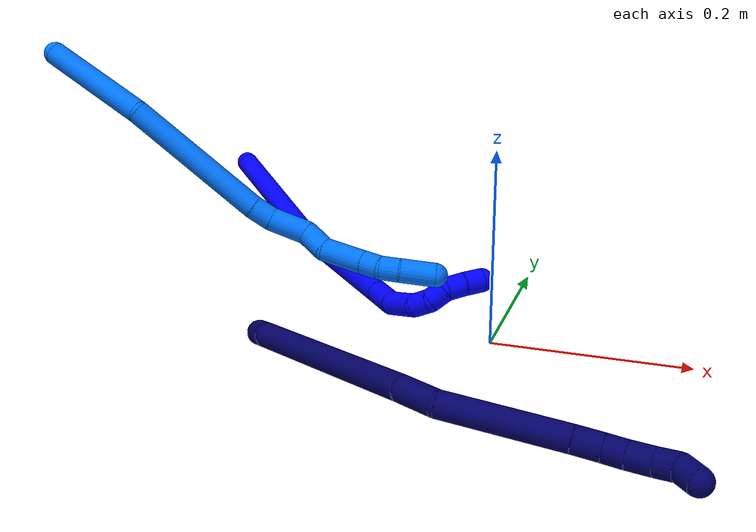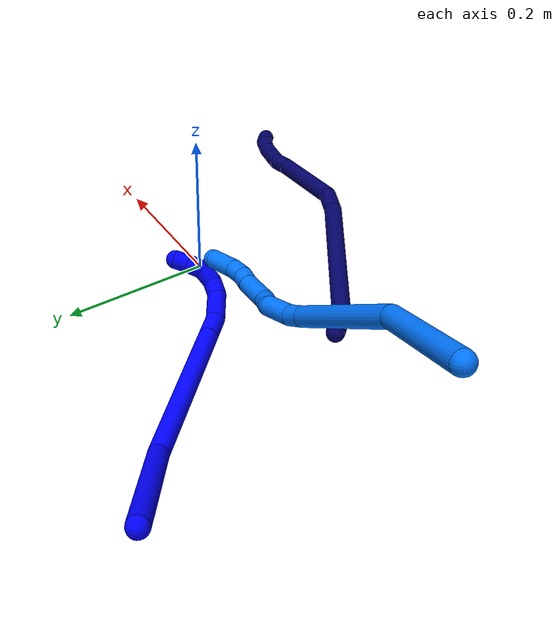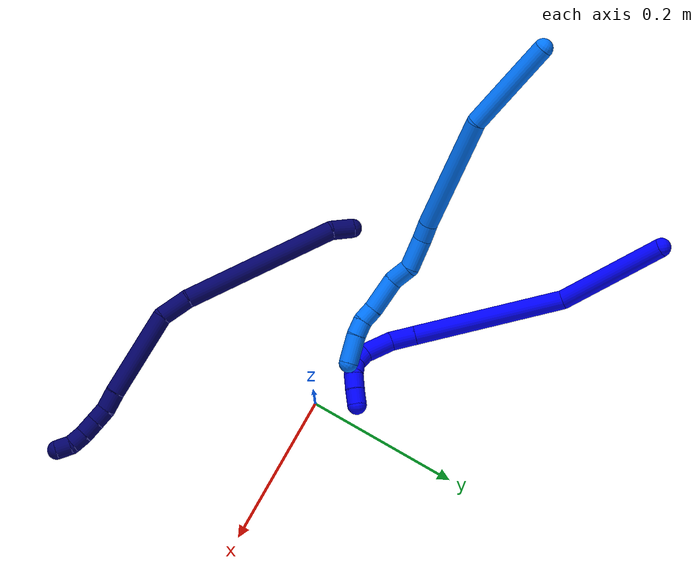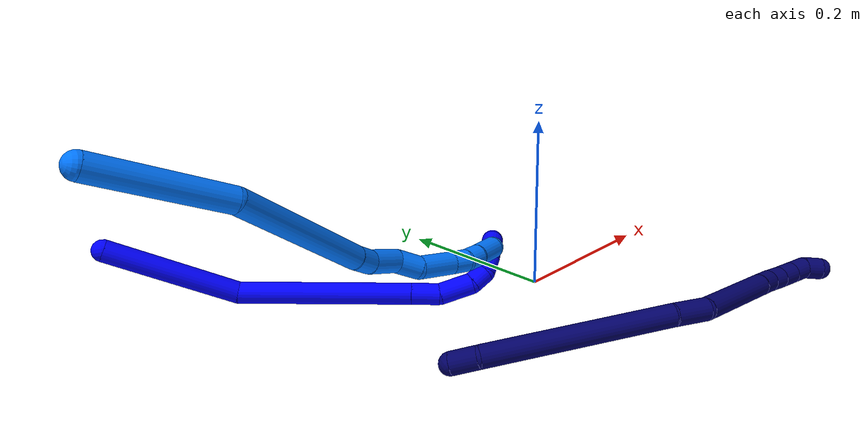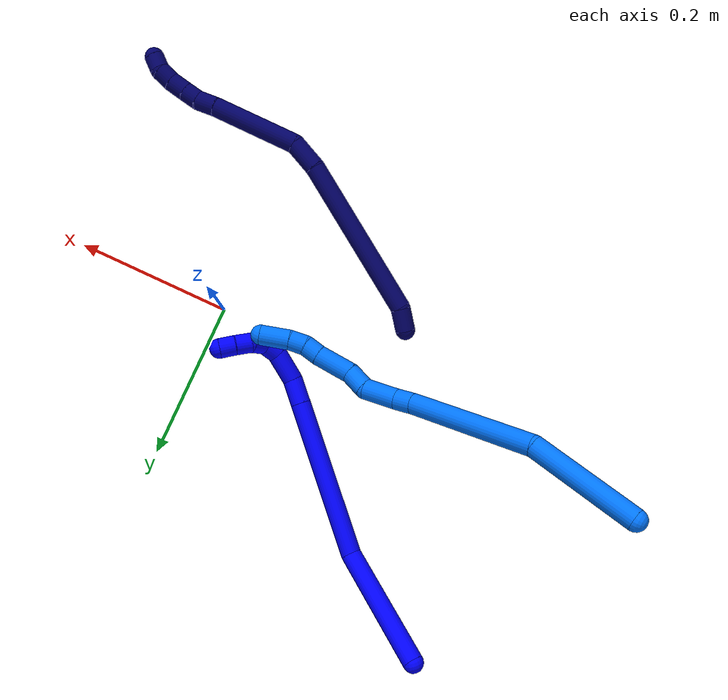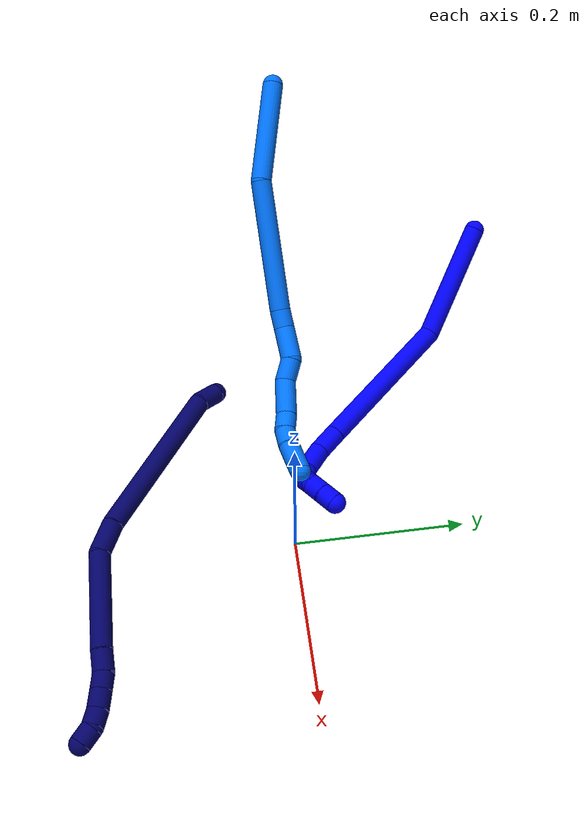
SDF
<sdf version="1.7">
 <world name="default">
  <model name="1">
   <static>0</static>
   <link name="1">
    <collision name="collision-cylinder-e_1_1_4">
     <pose>0.036945 0.030817 -0.058041 -2.65349 0.512157 -1.62095</pose>
     <geometry><cylinder><radius>0.0125</radius><length>0.150776</length></cylinder></geometry>
     <surface>
      <friction><ode><mu>1.16</mu><mu2>1.16</mu2><slip1>0</slip1><slip2>0</slip2></ode></friction>
      <contact><ode><kp>1e+06</kp><kd>1</kd><max_vel>0</max_vel><min_depth>0.001</min_depth></ode></contact>
     </surface>
    </collision>
    <visual name="visual-cylinder-e_1_1_4">
     <pose>0.036945 0.030817 -0.058041 -2.65349 0.512157 -1.62095</pose>
     <geometry><cylinder><radius>0.0125</radius><length>0.150776</length></cylinder></geometry>
     <material><ambient>0 0 1 1</ambient></material>
    </visual>
    <collision name="collision-cylinder-e_2_4_5">
     <pose>0.087077 0.078405 -0.212437 -2.96927 0.134032 -1.32116</pose>
     <geometry><cylinder><radius>0.0125</radius><length>0.197377</length></cylinder></geometry>
     <surface>
      <friction><ode><mu>1.16</mu><mu2>1.16</mu2><slip1>0</slip1><slip2>0</slip2></ode></friction>
      <contact><ode><kp>1e+06</kp><kd>1</kd><max_vel>0</max_vel><min_depth>0.001</min_depth></ode></contact>
     </surface>
    </collision>
    <visual name="visual-cylinder-e_2_4_5">
     <pose>0.087077 0.078405 -0.212437 -2.96927 0.134032 -1.32116</pose>
     <geometry><cylinder><radius>0.0125</radius><length>0.197377</length></cylinder></geometry>
     <material><ambient>0 0 1 1</ambient></material>
    </visual>
    <collision name="collision-cylinder-e_3_5_6">
     <pose>0.102583 0.098065 -0.324571 -2.96046 0.143498 -1.33896</pose>
     <geometry><cylinder><radius>0.0125</radius><length>0.032416</length></cylinder></geometry>
     <surface>
      <friction><ode><mu>1.16</mu><mu2>1.16</mu2><slip1>0</slip1><slip2>0</slip2></ode></friction>
      <contact><ode><kp>1e+06</kp><kd>1</kd><max_vel>0</max_vel><min_depth>0.001</min_depth></ode></contact>
     </surface>
    </collision>
    <visual name="visual-cylinder-e_3_5_6">
     <pose>0.102583 0.098065 -0.324571 -2.96046 0.143498 -1.33896</pose>
     <geometry><cylinder><radius>0.0125</radius><length>0.032416</length></cylinder></geometry>
     <material><ambient>0 0 1 1</ambient></material>
    </visual>
    <collision name="collision-cylinder-e_4_6_7">
     <pose>0.108466 0.097749 -0.359197 2.97314 0.18439 1.66155</pose>
     <geometry><cylinder><radius>0.0125</radius><length>0.038895</length></cylinder></geometry>
     <surface>
      <friction><ode><mu>1.16</mu><mu2>1.16</mu2><slip1>0</slip1><slip2>0</slip2></ode></friction>
      <contact><ode><kp>1e+06</kp><kd>1</kd><max_vel>0</max_vel><min_depth>0.001</min_depth></ode></contact>
     </surface>
    </collision>
    <visual name="visual-cylinder-e_4_6_7">
     <pose>0.108466 0.097749 -0.359197 2.97314 0.18439 1.66155</pose>
     <geometry><cylinder><radius>0.0125</radius><length>0.038895</length></cylinder></geometry>
     <material><ambient>0 0 1 1</ambient></material>
    </visual>
    <collision name="collision-cylinder-e_5_7_8">
     <pose>0.115355 0.089193 -0.38603 2.55117 0.332854 1.00936</pose>
     <geometry><cylinder><radius>0.0125</radius><length>0.020341</length></cylinder></geometry>
     <surface>
      <friction><ode><mu>1.16</mu><mu2>1.16</mu2><slip1>0</slip1><slip2>0</slip2></ode></friction>
      <contact><ode><kp>1e+06</kp><kd>1</kd><max_vel>0</max_vel><min_depth>0.001</min_depth></ode></contact>
     </surface>
    </collision>
    <visual name="visual-cylinder-e_5_7_8">
     <pose>0.115355 0.089193 -0.38603 2.55117 0.332854 1.00936</pose>
     <geometry><cylinder><radius>0.0125</radius><length>0.020341</length></cylinder></geometry>
     <material><ambient>0 0 1 1</ambient></material>
    </visual>
    <collision name="collision-cylinder-e_6_8_9">
     <pose>0.122455 0.075413 -0.397883 2.00104 0.386718 0.592622</pose>
     <geometry><cylinder><radius>0.0125</radius><length>0.020026</length></cylinder></geometry>
     <surface>
      <friction><ode><mu>1.16</mu><mu2>1.16</mu2><slip1>0</slip1><slip2>0</slip2></ode></friction>
      <contact><ode><kp>1e+06</kp><kd>1</kd><max_vel>0</max_vel><min_depth>0.001</min_depth></ode></contact>
     </surface>
    </collision>
    <visual name="visual-cylinder-e_6_8_9">
     <pose>0.122455 0.075413 -0.397883 2.00104 0.386718 0.592622</pose>
     <geometry><cylinder><radius>0.0125</radius><length>0.020026</length></cylinder></geometry>
     <material><ambient>0 0 1 1</ambient></material>
    </visual>
    <collision name="collision-cylinder-e_7_9_10">
     <pose>0.133979 0.060762 -0.403256 1.80819 0.880172 1.0785</pose>
     <geometry><cylinder><radius>0.0125</radius><length>0.020101</length></cylinder></geometry>
     <surface>
      <friction><ode><mu>1.16</mu><mu2>1.16</mu2><slip1>0</slip1><slip2>0</slip2></ode></friction>
      <contact><ode><kp>1e+06</kp><kd>1</kd><max_vel>0</max_vel><min_depth>0.001</min_depth></ode></contact>
     </surface>
    </collision>
    <visual name="visual-cylinder-e_7_9_10">
     <pose>0.133979 0.060762 -0.403256 1.80819 0.880172 1.0785</pose>
     <geometry><cylinder><radius>0.0125</radius><length>0.020101</length></cylinder></geometry>
     <material><ambient>0 0 1 1</ambient></material>
    </visual>
    <collision name="collision-cylinder-e_8_10_2">
     <pose>0.149937 0.048856 -0.405739 1.74105 0.958523 1.10513</pose>
     <geometry><cylinder><radius>0.0125</radius><length>0.020067</length></cylinder></geometry>
     <surface>
      <friction><ode><mu>1.16</mu><mu2>1.16</mu2><slip1>0</slip1><slip2>0</slip2></ode></friction>
      <contact><ode><kp>1e+06</kp><kd>1</kd><max_vel>0</max_vel><min_depth>0.001</min_depth></ode></contact>
     </surface>
    </collision>
    <visual name="visual-cylinder-e_8_10_2">
     <pose>0.149937 0.048856 -0.405739 1.74105 0.958523 1.10513</pose>
     <geometry><cylinder><radius>0.0125</radius><length>0.020067</length></cylinder></geometry>
     <material><ambient>0 0 1 1</ambient></material>
    </visual>
    <collision name="collision-sphere-2">
     <pose>0.158148 0.043173 -0.406716 0 -0 0</pose>
     <geometry><sphere><radius>0.0125</radius></sphere></geometry>
     <surface>
      <friction><ode><mu>1.16</mu><mu2>1.16</mu2><slip1>0</slip1><slip2>0</slip2></ode></friction>
      <contact><ode><kp>1e+06</kp><kd>1</kd><max_vel>0</max_vel><min_depth>0.001</min_depth></ode></contact>
     </surface>
    </collision>
    <visual name="visual-sphere-2">
     <pose>0.158148 0.043173 -0.406716 0 -0 0</pose>
     <geometry><sphere><radius>0.0125</radius></sphere></geometry>
     <material><ambient>0 0 1 1</ambient></material>
    </visual>
    <collision name="collision-sphere-10">
     <pose>0.141726 0.054539 -0.404762 0 -0 0</pose>
     <geometry><sphere><radius>0.0125</radius></sphere></geometry>
     <surface>
      <friction><ode><mu>1.16</mu><mu2>1.16</mu2><slip1>0</slip1><slip2>0</slip2></ode></friction>
      <contact><ode><kp>1e+06</kp><kd>1</kd><max_vel>0</max_vel><min_depth>0.001</min_depth></ode></contact>
     </surface>
    </collision>
    <visual name="visual-sphere-10">
     <pose>0.141726 0.054539 -0.404762 0 -0 0</pose>
     <geometry><sphere><radius>0.0125</radius></sphere></geometry>
     <material><ambient>0 0 1 1</ambient></material>
    </visual>
    <collision name="collision-sphere-9">
     <pose>0.126231 0.066985 -0.40175 0 -0 0</pose>
     <geometry><sphere><radius>0.0125</radius></sphere></geometry>
     <surface>
      <friction><ode><mu>1.16</mu><mu2>1.16</mu2><slip1>0</slip1><slip2>0</slip2></ode></friction>
      <contact><ode><kp>1e+06</kp><kd>1</kd><max_vel>0</max_vel><min_depth>0.001</min_depth></ode></contact>
     </surface>
    </collision>
    <visual name="visual-sphere-9">
     <pose>0.126231 0.066985 -0.40175 0 -0 0</pose>
     <geometry><sphere><radius>0.0125</radius></sphere></geometry>
     <material><ambient>0 0 1 1</ambient></material>
    </visual>
    <collision name="collision-sphere-4">
     <pose>0.073889 0.061634 -0.116082 0 -0 0</pose>
     <geometry><sphere><radius>0.0125</radius></sphere></geometry>
     <surface>
      <friction><ode><mu>1.16</mu><mu2>1.16</mu2><slip1>0</slip1><slip2>0</slip2></ode></friction>
      <contact><ode><kp>1e+06</kp><kd>1</kd><max_vel>0</max_vel><min_depth>0.001</min_depth></ode></contact>
     </surface>
    </collision>
    <visual name="visual-sphere-4">
     <pose>0.073889 0.061634 -0.116082 0 -0 0</pose>
     <geometry><sphere><radius>0.0125</radius></sphere></geometry>
     <material><ambient>0 0 1 1</ambient></material>
    </visual>
    <collision name="collision-sphere-1">
     <geometry><sphere><radius>0.0125</radius></sphere></geometry>
     <surface>
      <friction><ode><mu>1.16</mu><mu2>1.16</mu2><slip1>0</slip1><slip2>0</slip2></ode></friction>
      <contact><ode><kp>1e+06</kp><kd>1</kd><max_vel>0</max_vel><min_depth>0.001</min_depth></ode></contact>
     </surface>
    </collision>
    <visual name="visual-sphere-1">
     <geometry><sphere><radius>0.0125</radius></sphere></geometry>
     <material><ambient>0 0 1 1</ambient></material>
    </visual>
    <collision name="collision-sphere-8">
     <pose>0.118678 0.083842 -0.394015 0 -0 0</pose>
     <geometry><sphere><radius>0.0125</radius></sphere></geometry>
     <surface>
      <friction><ode><mu>1.16</mu><mu2>1.16</mu2><slip1>0</slip1><slip2>0</slip2></ode></friction>
      <contact><ode><kp>1e+06</kp><kd>1</kd><max_vel>0</max_vel><min_depth>0.001</min_depth></ode></contact>
     </surface>
    </collision>
    <visual name="visual-sphere-8">
     <pose>0.118678 0.083842 -0.394015 0 -0 0</pose>
     <geometry><sphere><radius>0.0125</radius></sphere></geometry>
     <material><ambient>0 0 1 1</ambient></material>
    </visual>
    <collision name="collision-sphere-5">
     <pose>0.100265 0.095175 -0.308792 0 -0 0</pose>
     <geometry><sphere><radius>0.0125</radius></sphere></geometry>
     <surface>
      <friction><ode><mu>1.16</mu><mu2>1.16</mu2><slip1>0</slip1><slip2>0</slip2></ode></friction>
      <contact><ode><kp>1e+06</kp><kd>1</kd><max_vel>0</max_vel><min_depth>0.001</min_depth></ode></contact>
     </surface>
    </collision>
    <visual name="visual-sphere-5">
     <pose>0.100265 0.095175 -0.308792 0 -0 0</pose>
     <geometry><sphere><radius>0.0125</radius></sphere></geometry>
     <material><ambient>0 0 1 1</ambient></material>
    </visual>
    <collision name="collision-sphere-6">
     <pose>0.104901 0.100955 -0.34035 0 -0 0</pose>
     <geometry><sphere><radius>0.0125</radius></sphere></geometry>
     <surface>
      <friction><ode><mu>1.16</mu><mu2>1.16</mu2><slip1>0</slip1><slip2>0</slip2></ode></friction>
      <contact><ode><kp>1e+06</kp><kd>1</kd><max_vel>0</max_vel><min_depth>0.001</min_depth></ode></contact>
     </surface>
    </collision>
    <visual name="visual-sphere-6">
     <pose>0.104901 0.100955 -0.34035 0 -0 0</pose>
     <geometry><sphere><radius>0.0125</radius></sphere></geometry>
     <material><ambient>0 0 1 1</ambient></material>
    </visual>
    <collision name="collision-sphere-7">
     <pose>0.112032 0.094544 -0.378044 0 -0 0</pose>
     <geometry><sphere><radius>0.0125</radius></sphere></geometry>
     <surface>
      <friction><ode><mu>1.16</mu><mu2>1.16</mu2><slip1>0</slip1><slip2>0</slip2></ode></friction>
      <contact><ode><kp>1e+06</kp><kd>1</kd><max_vel>0</max_vel><min_depth>0.001</min_depth></ode></contact>
     </surface>
    </collision>
    <visual name="visual-sphere-7">
     <pose>0.112032 0.094544 -0.378044 0 -0 0</pose>
     <geometry><sphere><radius>0.0125</radius></sphere></geometry>
     <material><ambient>0 0 1 1</ambient></material>
    </visual>
    <inertial>
     <pose>0.081604 0.065258 -0.214484 0 -0 0</pose>
     <mass>0.5</mass>
     <inertia>
      <ixx>-0.000709</ixx>
      <ixy>0</ixy>
      <ixz>0</ixz>
      <iyy>-0.00093</iyy>
      <iyz>0</iyz>
      <izz>-0.000492</izz>
     </inertia>
    </inertial>
   </link>
   <pose>-0.387913 0.28822 0.08133 -1.80012 0.514199 0.6126</pose>
  </model>
  <model name="7">
   <static>0</static>
   <link name="7">
    <collision name="collision-cylinder-e_1_1_4">
     <pose>-0.000717 -0.00649 0.013102 0.459912 -0.048983 -0.011469</pose>
     <geometry><cylinder><radius>0.0125</radius><length>0.029277</length></cylinder></geometry>
     <surface>
      <friction><ode><mu>1.16</mu><mu2>1.16</mu2><slip1>0</slip1><slip2>0</slip2></ode></friction>
      <contact><ode><kp>1e+06</kp><kd>1</kd><max_vel>0</max_vel><min_depth>0.001</min_depth></ode></contact>
     </surface>
    </collision>
    <visual name="visual-cylinder-e_1_1_4">
     <pose>-0.000717 -0.00649 0.013102 0.459912 -0.048983 -0.011469</pose>
     <geometry><cylinder><radius>0.0125</radius><length>0.029277</length></cylinder></geometry>
     <material><ambient>0.003922 0 0.403922 1</ambient></material>
    </visual>
    <collision name="collision-cylinder-e_2_4_5">
     <pose>0.030682 -0.053747 0.115854 0.426787 0.315225 0.068851</pose>
     <geometry><cylinder><radius>0.0125</radius><length>0.207177</length></cylinder></geometry>
     <surface>
      <friction><ode><mu>1.16</mu><mu2>1.16</mu2><slip1>0</slip1><slip2>0</slip2></ode></friction>
      <contact><ode><kp>1e+06</kp><kd>1</kd><max_vel>0</max_vel><min_depth>0.001</min_depth></ode></contact>
     </surface>
    </collision>
    <visual name="visual-cylinder-e_2_4_5">
     <pose>0.030682 -0.053747 0.115854 0.426787 0.315225 0.068851</pose>
     <geometry><cylinder><radius>0.0125</radius><length>0.207177</length></cylinder></geometry>
     <material><ambient>0.003922 0 0.403922 1</ambient></material>
    </visual>
    <collision name="collision-cylinder-e_3_5_6">
     <pose>0.072305 -0.101841 0.22131 0.43405 0.499577 0.112387</pose>
     <geometry><cylinder><radius>0.0125</radius><length>0.039693</length></cylinder></geometry>
     <surface>
      <friction><ode><mu>1.16</mu><mu2>1.16</mu2><slip1>0</slip1><slip2>0</slip2></ode></friction>
      <contact><ode><kp>1e+06</kp><kd>1</kd><max_vel>0</max_vel><min_depth>0.001</min_depth></ode></contact>
     </surface>
    </collision>
    <visual name="visual-cylinder-e_3_5_6">
     <pose>0.072305 -0.101841 0.22131 0.43405 0.499577 0.112387</pose>
     <geometry><cylinder><radius>0.0125</radius><length>0.039693</length></cylinder></geometry>
     <material><ambient>0.003922 0 0.403922 1</ambient></material>
    </visual>
    <collision name="collision-cylinder-e_4_6_7">
     <pose>0.125023 -0.11483 0.274446 0.150546 0.852636 0.068477</pose>
     <geometry><cylinder><radius>0.0125</radius><length>0.114766</length></cylinder></geometry>
     <surface>
      <friction><ode><mu>1.16</mu><mu2>1.16</mu2><slip1>0</slip1><slip2>0</slip2></ode></friction>
      <contact><ode><kp>1e+06</kp><kd>1</kd><max_vel>0</max_vel><min_depth>0.001</min_depth></ode></contact>
     </surface>
    </collision>
    <visual name="visual-cylinder-e_4_6_7">
     <pose>0.125023 -0.11483 0.274446 0.150546 0.852636 0.068477</pose>
     <geometry><cylinder><radius>0.0125</radius><length>0.114766</length></cylinder></geometry>
     <material><ambient>0.003922 0 0.403922 1</ambient></material>
    </visual>
    <collision name="collision-cylinder-e_5_7_8">
     <pose>0.178633 -0.12156 0.319386 0.139332 0.934472 0.070377</pose>
     <geometry><cylinder><radius>0.0125</radius><length>0.025861</length></cylinder></geometry>
     <surface>
      <friction><ode><mu>1.16</mu><mu2>1.16</mu2><slip1>0</slip1><slip2>0</slip2></ode></friction>
      <contact><ode><kp>1e+06</kp><kd>1</kd><max_vel>0</max_vel><min_depth>0.001</min_depth></ode></contact>
     </surface>
    </collision>
    <visual name="visual-cylinder-e_5_7_8">
     <pose>0.178633 -0.12156 0.319386 0.139332 0.934472 0.070377</pose>
     <geometry><cylinder><radius>0.0125</radius><length>0.025861</length></cylinder></geometry>
     <material><ambient>0.003922 0 0.403922 1</ambient></material>
    </visual>
    <collision name="collision-cylinder-e_6_8_9">
     <pose>0.195559 -0.124598 0.33441 0.259847 0.704899 0.096041</pose>
     <geometry><cylinder><radius>0.0125</radius><length>0.020144</length></cylinder></geometry>
     <surface>
      <friction><ode><mu>1.16</mu><mu2>1.16</mu2><slip1>0</slip1><slip2>0</slip2></ode></friction>
      <contact><ode><kp>1e+06</kp><kd>1</kd><max_vel>0</max_vel><min_depth>0.001</min_depth></ode></contact>
     </surface>
    </collision>
    <visual name="visual-cylinder-e_6_8_9">
     <pose>0.195559 -0.124598 0.33441 0.259847 0.704899 0.096041</pose>
     <geometry><cylinder><radius>0.0125</radius><length>0.020144</length></cylinder></geometry>
     <material><ambient>0.003922 0 0.403922 1</ambient></material>
    </visual>
    <collision name="collision-cylinder-e_7_9_10">
     <pose>0.209186 -0.128524 0.350505 0.221459 0.673534 0.077813</pose>
     <geometry><cylinder><radius>0.0125</radius><length>0.022769</length></cylinder></geometry>
     <surface>
      <friction><ode><mu>1.16</mu><mu2>1.16</mu2><slip1>0</slip1><slip2>0</slip2></ode></friction>
      <contact><ode><kp>1e+06</kp><kd>1</kd><max_vel>0</max_vel><min_depth>0.001</min_depth></ode></contact>
     </surface>
    </collision>
    <visual name="visual-cylinder-e_7_9_10">
     <pose>0.209186 -0.128524 0.350505 0.221459 0.673534 0.077813</pose>
     <geometry><cylinder><radius>0.0125</radius><length>0.022769</length></cylinder></geometry>
     <material><ambient>0.003922 0 0.403922 1</ambient></material>
    </visual>
    <collision name="collision-cylinder-e_8_10_11">
     <pose>0.22114 -0.132574 0.367785 0.239068 0.501541 0.061514</pose>
     <geometry><cylinder><radius>0.0125</radius><length>0.020187</length></cylinder></geometry>
     <surface>
      <friction><ode><mu>1.16</mu><mu2>1.16</mu2><slip1>0</slip1><slip2>0</slip2></ode></friction>
      <contact><ode><kp>1e+06</kp><kd>1</kd><max_vel>0</max_vel><min_depth>0.001</min_depth></ode></contact>
     </surface>
    </collision>
    <visual name="visual-cylinder-e_8_10_11">
     <pose>0.22114 -0.132574 0.367785 0.239068 0.501541 0.061514</pose>
     <geometry><cylinder><radius>0.0125</radius><length>0.020187</length></cylinder></geometry>
     <material><ambient>0.003922 0 0.403922 1</ambient></material>
    </visual>
    <collision name="collision-cylinder-e_9_11_2">
     <pose>0.229237 -0.140779 0.383693 0.696172 0.328284 0.120058</pose>
     <geometry><cylinder><radius>0.0125</radius><length>0.020126</length></cylinder></geometry>
     <surface>
      <friction><ode><mu>1.16</mu><mu2>1.16</mu2><slip1>0</slip1><slip2>0</slip2></ode></friction>
      <contact><ode><kp>1e+06</kp><kd>1</kd><max_vel>0</max_vel><min_depth>0.001</min_depth></ode></contact>
     </surface>
    </collision>
    <visual name="visual-cylinder-e_9_11_2">
     <pose>0.229237 -0.140779 0.383693 0.696172 0.328284 0.120058</pose>
     <geometry><cylinder><radius>0.0125</radius><length>0.020126</length></cylinder></geometry>
     <material><ambient>0.003922 0 0.403922 1</ambient></material>
    </visual>
    <collision name="collision-sphere-2">
     <pose>0.232482 -0.146888 0.391002 0 -0 0</pose>
     <geometry><sphere><radius>0.0125</radius></sphere></geometry>
     <surface>
      <friction><ode><mu>1.16</mu><mu2>1.16</mu2><slip1>0</slip1><slip2>0</slip2></ode></friction>
      <contact><ode><kp>1e+06</kp><kd>1</kd><max_vel>0</max_vel><min_depth>0.001</min_depth></ode></contact>
     </surface>
    </collision>
    <visual name="visual-sphere-2">
     <pose>0.232482 -0.146888 0.391002 0 -0 0</pose>
     <geometry><sphere><radius>0.0125</radius></sphere></geometry>
     <material><ambient>0.003922 0 0.403922 1</ambient></material>
    </visual>
    <collision name="collision-sphere-11">
     <pose>0.225993 -0.13467 0.376383 0 -0 0</pose>
     <geometry><sphere><radius>0.0125</radius></sphere></geometry>
     <surface>
      <friction><ode><mu>1.16</mu><mu2>1.16</mu2><slip1>0</slip1><slip2>0</slip2></ode></friction>
      <contact><ode><kp>1e+06</kp><kd>1</kd><max_vel>0</max_vel><min_depth>0.001</min_depth></ode></contact>
     </surface>
    </collision>
    <visual name="visual-sphere-11">
     <pose>0.225993 -0.13467 0.376383 0 -0 0</pose>
     <geometry><sphere><radius>0.0125</radius></sphere></geometry>
     <material><ambient>0.003922 0 0.403922 1</ambient></material>
    </visual>
    <collision name="collision-sphere-10">
     <pose>0.216287 -0.130479 0.359186 0 -0 0</pose>
     <geometry><sphere><radius>0.0125</radius></sphere></geometry>
     <surface>
      <friction><ode><mu>1.16</mu><mu2>1.16</mu2><slip1>0</slip1><slip2>0</slip2></ode></friction>
      <contact><ode><kp>1e+06</kp><kd>1</kd><max_vel>0</max_vel><min_depth>0.001</min_depth></ode></contact>
     </surface>
    </collision>
    <visual name="visual-sphere-10">
     <pose>0.216287 -0.130479 0.359186 0 -0 0</pose>
     <geometry><sphere><radius>0.0125</radius></sphere></geometry>
     <material><ambient>0.003922 0 0.403922 1</ambient></material>
    </visual>
    <collision name="collision-sphere-9">
     <pose>0.202085 -0.126569 0.341824 0 -0 0</pose>
     <geometry><sphere><radius>0.0125</radius></sphere></geometry>
     <surface>
      <friction><ode><mu>1.16</mu><mu2>1.16</mu2><slip1>0</slip1><slip2>0</slip2></ode></friction>
      <contact><ode><kp>1e+06</kp><kd>1</kd><max_vel>0</max_vel><min_depth>0.001</min_depth></ode></contact>
     </surface>
    </collision>
    <visual name="visual-sphere-9">
     <pose>0.202085 -0.126569 0.341824 0 -0 0</pose>
     <geometry><sphere><radius>0.0125</radius></sphere></geometry>
     <material><ambient>0.003922 0 0.403922 1</ambient></material>
    </visual>
    <collision name="collision-sphere-4">
     <pose>-0.001434 -0.01298 0.026204 0 -0 0</pose>
     <geometry><sphere><radius>0.0125</radius></sphere></geometry>
     <surface>
      <friction><ode><mu>1.16</mu><mu2>1.16</mu2><slip1>0</slip1><slip2>0</slip2></ode></friction>
      <contact><ode><kp>1e+06</kp><kd>1</kd><max_vel>0</max_vel><min_depth>0.001</min_depth></ode></contact>
     </surface>
    </collision>
    <visual name="visual-sphere-4">
     <pose>-0.001434 -0.01298 0.026204 0 -0 0</pose>
     <geometry><sphere><radius>0.0125</radius></sphere></geometry>
     <material><ambient>0.003922 0 0.403922 1</ambient></material>
    </visual>
    <collision name="collision-sphere-1">
     <geometry><sphere><radius>0.0125</radius></sphere></geometry>
     <surface>
      <friction><ode><mu>1.16</mu><mu2>1.16</mu2><slip1>0</slip1><slip2>0</slip2></ode></friction>
      <contact><ode><kp>1e+06</kp><kd>1</kd><max_vel>0</max_vel><min_depth>0.001</min_depth></ode></contact>
     </surface>
    </collision>
    <visual name="visual-sphere-1">
     <geometry><sphere><radius>0.0125</radius></sphere></geometry>
     <material><ambient>0.003922 0 0.403922 1</ambient></material>
    </visual>
    <collision name="collision-sphere-8">
     <pose>0.189032 -0.122627 0.326996 0 -0 0</pose>
     <geometry><sphere><radius>0.0125</radius></sphere></geometry>
     <surface>
      <friction><ode><mu>1.16</mu><mu2>1.16</mu2><slip1>0</slip1><slip2>0</slip2></ode></friction>
      <contact><ode><kp>1e+06</kp><kd>1</kd><max_vel>0</max_vel><min_depth>0.001</min_depth></ode></contact>
     </surface>
    </collision>
    <visual name="visual-sphere-8">
     <pose>0.189032 -0.122627 0.326996 0 -0 0</pose>
     <geometry><sphere><radius>0.0125</radius></sphere></geometry>
     <material><ambient>0.003922 0 0.403922 1</ambient></material>
    </visual>
    <collision name="collision-sphere-5">
     <pose>0.062798 -0.094515 0.205505 0 -0 0</pose>
     <geometry><sphere><radius>0.0125</radius></sphere></geometry>
     <surface>
      <friction><ode><mu>1.16</mu><mu2>1.16</mu2><slip1>0</slip1><slip2>0</slip2></ode></friction>
      <contact><ode><kp>1e+06</kp><kd>1</kd><max_vel>0</max_vel><min_depth>0.001</min_depth></ode></contact>
     </surface>
    </collision>
    <visual name="visual-sphere-5">
     <pose>0.062798 -0.094515 0.205505 0 -0 0</pose>
     <geometry><sphere><radius>0.0125</radius></sphere></geometry>
     <material><ambient>0.003922 0 0.403922 1</ambient></material>
    </visual>
    <collision name="collision-sphere-6">
     <pose>0.081813 -0.109167 0.237115 0 -0 0</pose>
     <geometry><sphere><radius>0.0125</radius></sphere></geometry>
     <surface>
      <friction><ode><mu>1.16</mu><mu2>1.16</mu2><slip1>0</slip1><slip2>0</slip2></ode></friction>
      <contact><ode><kp>1e+06</kp><kd>1</kd><max_vel>0</max_vel><min_depth>0.001</min_depth></ode></contact>
     </surface>
    </collision>
    <visual name="visual-sphere-6">
     <pose>0.081813 -0.109167 0.237115 0 -0 0</pose>
     <geometry><sphere><radius>0.0125</radius></sphere></geometry>
     <material><ambient>0.003922 0 0.403922 1</ambient></material>
    </visual>
    <collision name="collision-sphere-7">
     <pose>0.168233 -0.120493 0.311777 0 -0 0</pose>
     <geometry><sphere><radius>0.0125</radius></sphere></geometry>
     <surface>
      <friction><ode><mu>1.16</mu><mu2>1.16</mu2><slip1>0</slip1><slip2>0</slip2></ode></friction>
      <contact><ode><kp>1e+06</kp><kd>1</kd><max_vel>0</max_vel><min_depth>0.001</min_depth></ode></contact>
     </surface>
    </collision>
    <visual name="visual-sphere-7">
     <pose>0.168233 -0.120493 0.311777 0 -0 0</pose>
     <geometry><sphere><radius>0.0125</radius></sphere></geometry>
     <material><ambient>0.003922 0 0.403922 1</ambient></material>
    </visual>
    <inertial>
     <pose>0.091907 -0.085271 0.205581 0 -0 0</pose>
     <mass>0.5</mass>
     <inertia><ixx>0.000886</ixx><ixy>0</ixy><ixz>0</ixz><iyy>0.000879</iyy><iyz>0</iyz><izz>5e-06</izz></inertia>
    </inertial>
   </link>
   <pose>-0.221257 -0.072042 0.011473 0.792604 0.59125 0.526023</pose>
  </model>
  <model name="14">
   <static>0</static>
   <link name="14">
    <collision name="collision-cylinder-e_1_1_4">
     <pose>-0.0008 -0.008687 -0.062783 3.0041 -0.012619 -0.182771</pose>
     <geometry><cylinder><radius>0.0125</radius><length>0.126771</length></cylinder></geometry>
     <surface>
      <friction><ode><mu>1.16</mu><mu2>1.16</mu2><slip1>0</slip1><slip2>0</slip2></ode></friction>
      <contact><ode><kp>1e+06</kp><kd>1</kd><max_vel>0</max_vel><min_depth>0.001</min_depth></ode></contact>
     </surface>
    </collision>
    <visual name="visual-cylinder-e_1_1_4">
     <pose>-0.0008 -0.008687 -0.062783 3.0041 -0.012619 -0.182771</pose>
     <geometry><cylinder><radius>0.0125</radius><length>0.126771</length></cylinder></geometry>
     <material><ambient>0 0.462745 1 1</ambient></material>
    </visual>
    <collision name="collision-cylinder-e_2_4_5">
     <pose>-0.025912 -0.014512 -0.201219 -3.1038 -0.310729 2.90141</pose>
     <geometry><cylinder><radius>0.0125</radius><length>0.159033</length></cylinder></geometry>
     <surface>
      <friction><ode><mu>1.16</mu><mu2>1.16</mu2><slip1>0</slip1><slip2>0</slip2></ode></friction>
      <contact><ode><kp>1e+06</kp><kd>1</kd><max_vel>0</max_vel><min_depth>0.001</min_depth></ode></contact>
     </surface>
    </collision>
    <visual name="visual-cylinder-e_2_4_5">
     <pose>-0.025912 -0.014512 -0.201219 -3.1038 -0.310729 2.90141</pose>
     <geometry><cylinder><radius>0.0125</radius><length>0.159033</length></cylinder></geometry>
     <material><ambient>0 0.462745 1 1</ambient></material>
    </visual>
    <collision name="collision-cylinder-e_3_5_6">
     <pose>-0.053071 -0.010042 -0.287972 -2.99756 -0.24856 2.09419</pose>
     <geometry><cylinder><radius>0.0125</radius><length>0.02314</length></cylinder></geometry>
     <surface>
      <friction><ode><mu>1.16</mu><mu2>1.16</mu2><slip1>0</slip1><slip2>0</slip2></ode></friction>
      <contact><ode><kp>1e+06</kp><kd>1</kd><max_vel>0</max_vel><min_depth>0.001</min_depth></ode></contact>
     </surface>
    </collision>
    <visual name="visual-cylinder-e_3_5_6">
     <pose>-0.053071 -0.010042 -0.287972 -2.99756 -0.24856 2.09419</pose>
     <geometry><cylinder><radius>0.0125</radius><length>0.02314</length></cylinder></geometry>
     <material><ambient>0 0.462745 1 1</ambient></material>
    </visual>
    <collision name="collision-cylinder-e_4_6_7">
     <pose>-0.056376 -0.004409 -0.318955 -2.94195 -0.022617 0.224879</pose>
     <geometry><cylinder><radius>0.0125</radius><length>0.040585</length></cylinder></geometry>
     <surface>
      <friction><ode><mu>1.16</mu><mu2>1.16</mu2><slip1>0</slip1><slip2>0</slip2></ode></friction>
      <contact><ode><kp>1e+06</kp><kd>1</kd><max_vel>0</max_vel><min_depth>0.001</min_depth></ode></contact>
     </surface>
    </collision>
    <visual name="visual-cylinder-e_4_6_7">
     <pose>-0.056376 -0.004409 -0.318955 -2.94195 -0.022617 0.224879</pose>
     <geometry><cylinder><radius>0.0125</radius><length>0.040585</length></cylinder></geometry>
     <material><ambient>0 0.462745 1 1</ambient></material>
    </visual>
    <collision name="collision-cylinder-e_5_7_8">
     <pose>-0.057091 -0.004608 -0.352308 2.83779 -0.018155 -0.118463</pose>
     <geometry><cylinder><radius>0.0125</radius><length>0.028235</length></cylinder></geometry>
     <surface>
      <friction><ode><mu>1.16</mu><mu2>1.16</mu2><slip1>0</slip1><slip2>0</slip2></ode></friction>
      <contact><ode><kp>1e+06</kp><kd>1</kd><max_vel>0</max_vel><min_depth>0.001</min_depth></ode></contact>
     </surface>
    </collision>
    <visual name="visual-cylinder-e_5_7_8">
     <pose>-0.057091 -0.004608 -0.352308 2.83779 -0.018155 -0.118463</pose>
     <geometry><cylinder><radius>0.0125</radius><length>0.028235</length></cylinder></geometry>
     <material><ambient>0 0.462745 1 1</ambient></material>
    </visual>
    <collision name="collision-cylinder-e_6_8_9">
     <pose>-0.053522 -0.007181 -0.387927 -3.06727 0.170549 -2.32112</pose>
     <geometry><cylinder><radius>0.0125</radius><length>0.045077</length></cylinder></geometry>
     <surface>
      <friction><ode><mu>1.16</mu><mu2>1.16</mu2><slip1>0</slip1><slip2>0</slip2></ode></friction>
      <contact><ode><kp>1e+06</kp><kd>1</kd><max_vel>0</max_vel><min_depth>0.001</min_depth></ode></contact>
     </surface>
    </collision>
    <visual name="visual-cylinder-e_6_8_9">
     <pose>-0.053522 -0.007181 -0.387927 -3.06727 0.170549 -2.32112</pose>
     <geometry><cylinder><radius>0.0125</radius><length>0.045077</length></cylinder></geometry>
     <material><ambient>0 0.462745 1 1</ambient></material>
    </visual>
    <collision name="collision-cylinder-e_7_9_10">
     <pose>-0.046935 -0.005742 -0.419774 3.11993 0.277456 2.98675</pose>
     <geometry><cylinder><radius>0.0125</radius><length>0.020169</length></cylinder></geometry>
     <surface>
      <friction><ode><mu>1.16</mu><mu2>1.16</mu2><slip1>0</slip1><slip2>0</slip2></ode></friction>
      <contact><ode><kp>1e+06</kp><kd>1</kd><max_vel>0</max_vel><min_depth>0.001</min_depth></ode></contact>
     </surface>
    </collision>
    <visual name="visual-cylinder-e_7_9_10">
     <pose>-0.046935 -0.005742 -0.419774 3.11993 0.277456 2.98675</pose>
     <geometry><cylinder><radius>0.0125</radius><length>0.020169</length></cylinder></geometry>
     <material><ambient>0 0.462745 1 1</ambient></material>
    </visual>
    <collision name="collision-cylinder-e_8_10_11">
     <pose>-0.042048 -0.003061 -0.438947 -2.84545 0.211202 -1.23561</pose>
     <geometry><cylinder><radius>0.0125</radius><length>0.020267</length></cylinder></geometry>
     <surface>
      <friction><ode><mu>1.16</mu><mu2>1.16</mu2><slip1>0</slip1><slip2>0</slip2></ode></friction>
      <contact><ode><kp>1e+06</kp><kd>1</kd><max_vel>0</max_vel><min_depth>0.001</min_depth></ode></contact>
     </surface>
    </collision>
    <visual name="visual-cylinder-e_8_10_11">
     <pose>-0.042048 -0.003061 -0.438947 -2.84545 0.211202 -1.23561</pose>
     <geometry><cylinder><radius>0.0125</radius><length>0.020267</length></cylinder></geometry>
     <material><ambient>0 0.462745 1 1</ambient></material>
    </visual>
    <collision name="collision-cylinder-e_9_11_2">
     <pose>-0.037998 0.007217 -0.465124 -2.7252 0.105083 -0.487952</pose>
     <geometry><cylinder><radius>0.0125</radius><length>0.036723</length></cylinder></geometry>
     <surface>
      <friction><ode><mu>1.16</mu><mu2>1.16</mu2><slip1>0</slip1><slip2>0</slip2></ode></friction>
      <contact><ode><kp>1e+06</kp><kd>1</kd><max_vel>0</max_vel><min_depth>0.001</min_depth></ode></contact>
     </surface>
    </collision>
    <visual name="visual-cylinder-e_9_11_2">
     <pose>-0.037998 0.007217 -0.465124 -2.7252 0.105083 -0.487952</pose>
     <geometry><cylinder><radius>0.0125</radius><length>0.036723</length></cylinder></geometry>
     <material><ambient>0 0.462745 1 1</ambient></material>
    </visual>
    <collision name="collision-sphere-2">
     <pose>-0.036072 0.014602 -0.481824 0 -0 0</pose>
     <geometry><sphere><radius>0.0125</radius></sphere></geometry>
     <surface>
      <friction><ode><mu>1.16</mu><mu2>1.16</mu2><slip1>0</slip1><slip2>0</slip2></ode></friction>
      <contact><ode><kp>1e+06</kp><kd>1</kd><max_vel>0</max_vel><min_depth>0.001</min_depth></ode></contact>
     </surface>
    </collision>
    <visual name="visual-sphere-2">
     <pose>-0.036072 0.014602 -0.481824 0 -0 0</pose>
     <geometry><sphere><radius>0.0125</radius></sphere></geometry>
     <material><ambient>0 0.462745 1 1</ambient></material>
    </visual>
    <collision name="collision-sphere-11">
     <pose>-0.039924 -0.000169 -0.448424 0 -0 0</pose>
     <geometry><sphere><radius>0.0125</radius></sphere></geometry>
     <surface>
      <friction><ode><mu>1.16</mu><mu2>1.16</mu2><slip1>0</slip1><slip2>0</slip2></ode></friction>
      <contact><ode><kp>1e+06</kp><kd>1</kd><max_vel>0</max_vel><min_depth>0.001</min_depth></ode></contact>
     </surface>
    </collision>
    <visual name="visual-sphere-11">
     <pose>-0.039924 -0.000169 -0.448424 0 -0 0</pose>
     <geometry><sphere><radius>0.0125</radius></sphere></geometry>
     <material><ambient>0 0.462745 1 1</ambient></material>
    </visual>
    <collision name="collision-sphere-10">
     <pose>-0.044172 -0.005952 -0.42947 0 -0 0</pose>
     <geometry><sphere><radius>0.0125</radius></sphere></geometry>
     <surface>
      <friction><ode><mu>1.16</mu><mu2>1.16</mu2><slip1>0</slip1><slip2>0</slip2></ode></friction>
      <contact><ode><kp>1e+06</kp><kd>1</kd><max_vel>0</max_vel><min_depth>0.001</min_depth></ode></contact>
     </surface>
    </collision>
    <visual name="visual-sphere-10">
     <pose>-0.044172 -0.005952 -0.42947 0 -0 0</pose>
     <geometry><sphere><radius>0.0125</radius></sphere></geometry>
     <material><ambient>0 0.462745 1 1</ambient></material>
    </visual>
    <collision name="collision-sphere-9">
     <pose>-0.049697 -0.005532 -0.410077 0 -0 0</pose>
     <geometry><sphere><radius>0.0125</radius></sphere></geometry>
     <surface>
      <friction><ode><mu>1.16</mu><mu2>1.16</mu2><slip1>0</slip1><slip2>0</slip2></ode></friction>
      <contact><ode><kp>1e+06</kp><kd>1</kd><max_vel>0</max_vel><min_depth>0.001</min_depth></ode></contact>
     </surface>
    </collision>
    <visual name="visual-sphere-9">
     <pose>-0.049697 -0.005532 -0.410077 0 -0 0</pose>
     <geometry><sphere><radius>0.0125</radius></sphere></geometry>
     <material><ambient>0 0.462745 1 1</ambient></material>
    </visual>
    <collision name="collision-sphere-4">
     <pose>-0.0016 -0.017373 -0.125565 0 -0 0</pose>
     <geometry><sphere><radius>0.0125</radius></sphere></geometry>
     <surface>
      <friction><ode><mu>1.16</mu><mu2>1.16</mu2><slip1>0</slip1><slip2>0</slip2></ode></friction>
      <contact><ode><kp>1e+06</kp><kd>1</kd><max_vel>0</max_vel><min_depth>0.001</min_depth></ode></contact>
     </surface>
    </collision>
    <visual name="visual-sphere-4">
     <pose>-0.0016 -0.017373 -0.125565 0 -0 0</pose>
     <geometry><sphere><radius>0.0125</radius></sphere></geometry>
     <material><ambient>0 0.462745 1 1</ambient></material>
    </visual>
    <collision name="collision-sphere-1">
     <geometry><sphere><radius>0.0125</radius></sphere></geometry>
     <surface>
      <friction><ode><mu>1.16</mu><mu2>1.16</mu2><slip1>0</slip1><slip2>0</slip2></ode></friction>
      <contact><ode><kp>1e+06</kp><kd>1</kd><max_vel>0</max_vel><min_depth>0.001</min_depth></ode></contact>
     </surface>
    </collision>
    <visual name="visual-sphere-1">
     <geometry><sphere><radius>0.0125</radius></sphere></geometry>
     <material><ambient>0 0.462745 1 1</ambient></material>
    </visual>
    <collision name="collision-sphere-8">
     <pose>-0.057347 -0.00883 -0.365777 0 -0 0</pose>
     <geometry><sphere><radius>0.0125</radius></sphere></geometry>
     <surface>
      <friction><ode><mu>1.16</mu><mu2>1.16</mu2><slip1>0</slip1><slip2>0</slip2></ode></friction>
      <contact><ode><kp>1e+06</kp><kd>1</kd><max_vel>0</max_vel><min_depth>0.001</min_depth></ode></contact>
     </surface>
    </collision>
    <visual name="visual-sphere-8">
     <pose>-0.057347 -0.00883 -0.365777 0 -0 0</pose>
     <geometry><sphere><radius>0.0125</radius></sphere></geometry>
     <material><ambient>0 0.462745 1 1</ambient></material>
    </visual>
    <collision name="collision-sphere-5">
     <pose>-0.050224 -0.011652 -0.276874 0 -0 0</pose>
     <geometry><sphere><radius>0.0125</radius></sphere></geometry>
     <surface>
      <friction><ode><mu>1.16</mu><mu2>1.16</mu2><slip1>0</slip1><slip2>0</slip2></ode></friction>
      <contact><ode><kp>1e+06</kp><kd>1</kd><max_vel>0</max_vel><min_depth>0.001</min_depth></ode></contact>
     </surface>
    </collision>
    <visual name="visual-sphere-5">
     <pose>-0.050224 -0.011652 -0.276874 0 -0 0</pose>
     <geometry><sphere><radius>0.0125</radius></sphere></geometry>
     <material><ambient>0 0.462745 1 1</ambient></material>
    </visual>
    <collision name="collision-sphere-6">
     <pose>-0.055917 -0.008432 -0.29907 0 -0 0</pose>
     <geometry><sphere><radius>0.0125</radius></sphere></geometry>
     <surface>
      <friction><ode><mu>1.16</mu><mu2>1.16</mu2><slip1>0</slip1><slip2>0</slip2></ode></friction>
      <contact><ode><kp>1e+06</kp><kd>1</kd><max_vel>0</max_vel><min_depth>0.001</min_depth></ode></contact>
     </surface>
    </collision>
    <visual name="visual-sphere-6">
     <pose>-0.055917 -0.008432 -0.29907 0 -0 0</pose>
     <geometry><sphere><radius>0.0125</radius></sphere></geometry>
     <material><ambient>0 0.462745 1 1</ambient></material>
    </visual>
    <collision name="collision-sphere-7">
     <pose>-0.056835 -0.000385 -0.338839 0 -0 0</pose>
     <geometry><sphere><radius>0.0125</radius></sphere></geometry>
     <surface>
      <friction><ode><mu>1.16</mu><mu2>1.16</mu2><slip1>0</slip1><slip2>0</slip2></ode></friction>
      <contact><ode><kp>1e+06</kp><kd>1</kd><max_vel>0</max_vel><min_depth>0.001</min_depth></ode></contact>
     </surface>
    </collision>
    <visual name="visual-sphere-7">
     <pose>-0.056835 -0.000385 -0.338839 0 -0 0</pose>
     <geometry><sphere><radius>0.0125</radius></sphere></geometry>
     <material><ambient>0 0.462745 1 1</ambient></material>
    </visual>
    <inertial>
     <pose>-0.029914 -0.008374 -0.24289 0 -0 0</pose>
     <mass>0.5</mass>
     <inertia>
      <ixx>-0.000102</ixx>
      <ixy>0</ixy>
      <ixz>0</ixz>
      <iyy>0.000196</iyy>
      <iyz>0</iyz>
      <izz>7.4e-05</izz>
     </inertia>
    </inertial>
   </link>
   <pose>-0.50205 0.038676 0.259311 0.681802 -1.0978 -0.852035</pose>
  </model>
 </world>
</sdf>
